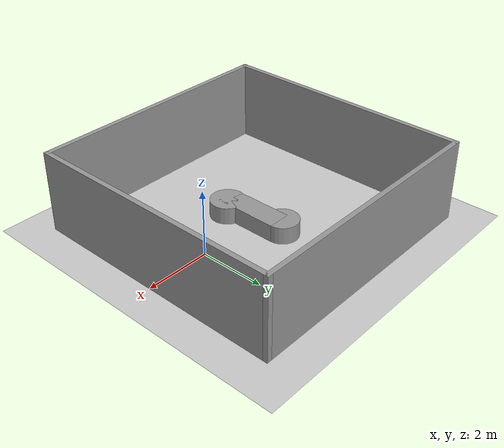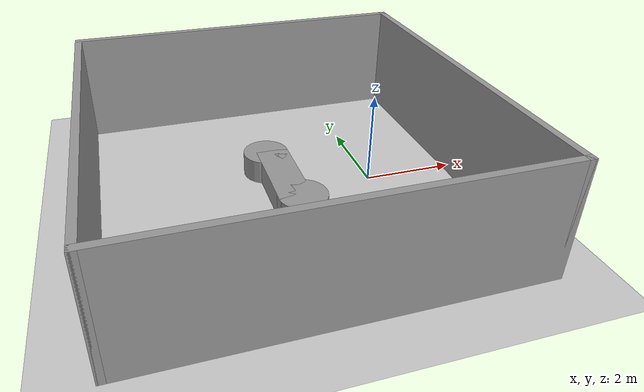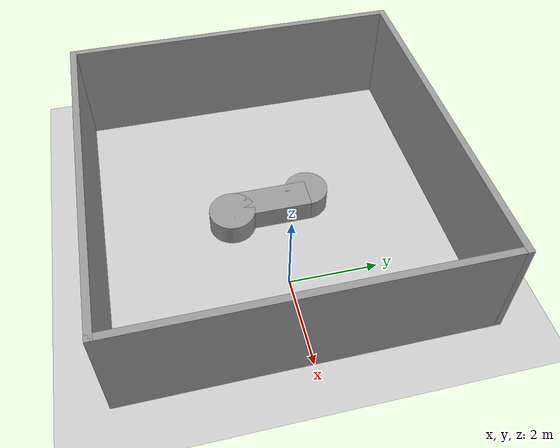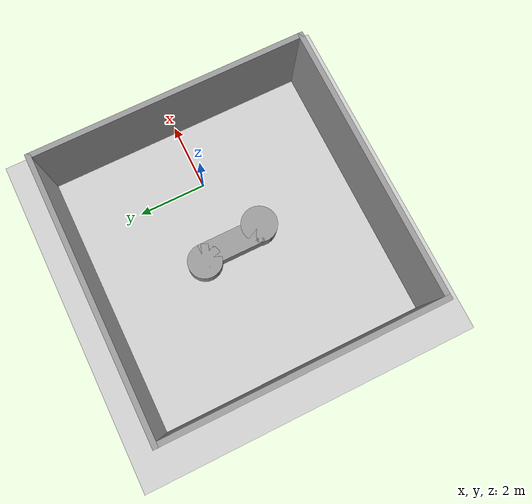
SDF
<?xml version="1.0" ?>
<sdf version='1.9'>
  <world name='moma_world_empty_world'>
    <physics name='1ms' type='ignored'>
      <max_step_size>0.004</max_step_size>
      <real_time_factor>1</real_time_factor>
      <real_time_update_rate>250</real_time_update_rate>
    </physics>
    <plugin name='gz::sim::systems::Physics' filename='gz-sim-physics-system'/>
    <plugin name='gz::sim::systems::UserCommands' filename='gz-sim-user-commands-system'/>
    <plugin name='gz::sim::systems::SceneBroadcaster' filename='gz-sim-scene-broadcaster-system'/>
    <plugin name='gz::sim::systems::Contact' filename='gz-sim-contact-system'/>
    <plugin name='gz::sim::systems::Sensors' filename='gz-sim-sensors-system'>
      <render_engine>ogre2</render_engine>
    </plugin>

    <plugin
      filename="gz-sim-imu-system"
      name="gz::sim::systems::Imu">
    </plugin>
    <gravity>0 0 -9.8</gravity>
    <magnetic_field>6e-06 2.3e-05 -4.2e-05</magnetic_field>
    <atmosphere type='adiabatic'/>
    <scene>
      <ambient>0.4 0.4 0.4 1</ambient>
      <background>0.7 0.7 0.7 1</background>
      <shadows>true</shadows>
    </scene>
    <model name='ground_plane'>
      <static>true</static>
      <link name='link'>
        <collision name='collision'>
          <geometry>
            <plane>
              <normal>0 0 1</normal>
              <size>100 100</size>
            </plane>
          </geometry>
          <surface>
            <friction>
              <ode/>
            </friction>
            <bounce/>
            <contact/>
          </surface>
        </collision>
        <visual name='visual'>
          <geometry>
            <plane>
              <normal>0 0 1</normal>
              <size>100 100</size>
            </plane>
          </geometry>
          <material>
            <ambient>0.8 0.8 0.8 1</ambient>
            <diffuse>0.8 0.8 0.8 1</diffuse>
            <specular>0.8 0.8 0.8 1</specular>
          </material>
        </visual>
        <pose>0 0 0 0 -0 0</pose>
        <inertial>
          <pose>0 0 0 0 -0 0</pose>
          <mass>1</mass>
          <inertia>
            <ixx>1</ixx>
            <ixy>0</ixy>
            <ixz>0</ixz>
            <iyy>1</iyy>
            <iyz>0</iyz>
            <izz>1</izz>
          </inertia>
        </inertial>
        <enable_wind>false</enable_wind>
      </link>
      <pose>10 10 0 0 -0 0</pose>
      <self_collide>false</self_collide>
    </model>
    <include>
      <uri>file:///home/phumint/moma_ws/install/moma_gazebo/share/moma_gazebo/models/eight_square_meter</uri>
      <name>eight_square_meter</name>
      <pose>-2 0 0 0 -0 0</pose>
    </include>
    <include>
      <uri>file:///home/phumint/moma_ws/install/moma_gazebo/share/moma_gazebo/models/demo_model</uri>
      <name>demo_model</name>
      <pose>-2 0 0.018999 -0 -0 0</pose>
    </include>
    <light name='sun' type='directional'>
      <pose>0 0 10 0 -0 0</pose>
      <cast_shadows>true</cast_shadows>
      <intensity>1</intensity>
      <direction>-0.5 0.1 -0.9</direction>
      <diffuse>0.8 0.8 0.8 1</diffuse>
      <specular>0.2 0.2 0.2 1</specular>
      <attenuation>
        <range>1000</range>
        <linear>0.01</linear>
        <constant>0.90000000000000002</constant>
        <quadratic>0.001</quadratic>
      </attenuation>
      <spot>
        <inner_angle>0</inner_angle>
        <outer_angle>0</outer_angle>
        <falloff>0</falloff>
      </spot>
    </light>
  </world>
</sdf>

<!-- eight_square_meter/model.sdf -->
<sdf version='1.7'>
  <model name='eight_square_meter'>
    <pose>-2.05016 2.30209 0 0 -0 0</pose>
    <link name='Wall_5'>
      <collision name='Wall_5_Collision'>
        <geometry>
          <box>
            <size>8 0.15 2.5</size>
          </box>
        </geometry>
        <pose>0 0 1.25 0 -0 0</pose>
      </collision>
      <visual name='Wall_5_Visual'>
        <pose>0 0 1.25 0 -0 0</pose>
        <geometry>
          <box>
            <size>8 0.15 2.5</size>
          </box>
        </geometry>
        <material>
          <script>
            <uri>file://media/materials/scripts/gazebo.material</uri>
            <name>Gazebo/Grey</name>
          </script>
          <ambient>1 1 1 1</ambient>
        </material>
        <meta>
          <layer>0</layer>
        </meta>
      </visual>
      <pose>0 -3.925 0 0 -0 0</pose>
    </link>
    <link name='Wall_6'>
      <collision name='Wall_6_Collision'>
        <geometry>
          <box>
            <size>8 0.15 2.5</size>
          </box>
        </geometry>
        <pose>0 0 1.25 0 -0 0</pose>
      </collision>
      <visual name='Wall_6_Visual'>
        <pose>0 0 1.25 0 -0 0</pose>
        <geometry>
          <box>
            <size>8 0.15 2.5</size>
          </box>
        </geometry>
        <material>
          <script>
            <uri>file://media/materials/scripts/gazebo.material</uri>
            <name>Gazebo/Grey</name>
          </script>
          <ambient>1 1 1 1</ambient>
        </material>
        <meta>
          <layer>0</layer>
        </meta>
      </visual>
      <pose>3.925 0 0 0 -0 1.5708</pose>
    </link>
    <link name='Wall_7'>
      <collision name='Wall_7_Collision'>
        <geometry>
          <box>
            <size>8 0.15 2.5</size>
          </box>
        </geometry>
        <pose>0 0 1.25 0 -0 0</pose>
      </collision>
      <visual name='Wall_7_Visual'>
        <pose>0 0 1.25 0 -0 0</pose>
        <geometry>
          <box>
            <size>8 0.15 2.5</size>
          </box>
        </geometry>
        <material>
          <script>
            <uri>file://media/materials/scripts/gazebo.material</uri>
            <name>Gazebo/Grey</name>
          </script>
          <ambient>1 1 1 1</ambient>
        </material>
        <meta>
          <layer>0</layer>
        </meta>
      </visual>
      <pose>0 3.925 0 0 -0 3.14159</pose>
    </link>
    <link name='Wall_8'>
      <collision name='Wall_8_Collision'>
        <geometry>
          <box>
            <size>8 0.15 2.5</size>
          </box>
        </geometry>
        <pose>0 0 1.25 0 -0 0</pose>
      </collision>
      <visual name='Wall_8_Visual'>
        <pose>0 0 1.25 0 -0 0</pose>
        <geometry>
          <box>
            <size>8 0.15 2.5</size>
          </box>
        </geometry>
        <material>
          <script>
            <uri>file://media/materials/scripts/gazebo.material</uri>
            <name>Gazebo/Grey</name>
          </script>
          <ambient>1 1 1 1</ambient>
        </material>
        <meta>
          <layer>0</layer>
        </meta>
      </visual>
      <pose>-3.925 0 0 0 -0 -1.5708</pose>
    </link>
    <static>1</static>
  </model>
</sdf>

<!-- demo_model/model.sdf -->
<sdf version='1.7'>
  <model name='demo_model'>
    <link name='link_0'>
      <inertial>
        <mass>1.41219</mass>
        <inertia>
          <ixx>0.579585</ixx>
          <ixy>0</ixy>
          <ixz>0</ixz>
          <iyy>0.177478</iyy>
          <iyz>0</iyz>
          <izz>0.521697</izz>
        </inertia>
        <pose>0 0 0 0 -0 0</pose>
      </inertial>
      <pose>-0.003219 -0.04931 0 0 -0 0</pose>
      <visual name='visual'>
        <pose>0 0 0 0 -0 0</pose>
        <geometry>
          <box>
            <size>0.712814 1.98115 1</size>
          </box>
        </geometry>
        <material>
          <lighting>1</lighting>
          <script>
            <uri>file://media/materials/scripts/gazebo.material</uri>
            <name>Gazebo/Grey</name>
          </script>
          <shader type='pixel'/>
          <emissive>0 0 0 1</emissive>
        </material>
        <transparency>0</transparency>
        <cast_shadows>1</cast_shadows>
      </visual>
      <collision name='collision'>
        <laser_retro>0</laser_retro>
        <max_contacts>10</max_contacts>
        <pose>0 0 0 0 -0 0</pose>
        <geometry>
          <box>
            <size>0.712814 1.98115 1</size>
          </box>
        </geometry>
        <surface>
          <friction>
            <ode>
              <mu>1</mu>
              <mu2>1</mu2>
              <fdir1>0 0 0</fdir1>
              <slip1>0</slip1>
              <slip2>0</slip2>
            </ode>
            <torsional>
              <coefficient>1</coefficient>
              <patch_radius>0</patch_radius>
              <surface_radius>0</surface_radius>
              <use_patch_radius>1</use_patch_radius>
              <ode>
                <slip>0</slip>
              </ode>
            </torsional>
          </friction>
          <bounce>
            <restitution_coefficient>0</restitution_coefficient>
            <threshold>1e+06</threshold>
          </bounce>
          <contact>
            <collide_without_contact>0</collide_without_contact>
            <collide_without_contact_bitmask>1</collide_without_contact_bitmask>
            <collide_bitmask>1</collide_bitmask>
            <ode>
              <soft_cfm>0</soft_cfm>
              <soft_erp>0.2</soft_erp>
              <kp>1e+13</kp>
              <kd>1</kd>
              <max_vel>0.01</max_vel>
              <min_depth>0</min_depth>
            </ode>
            <bullet>
              <split_impulse>1</split_impulse>
              <split_impulse_penetration_threshold>-0.01</split_impulse_penetration_threshold>
              <soft_cfm>0</soft_cfm>
              <soft_erp>0.2</soft_erp>
              <kp>1e+13</kp>
              <kd>1</kd>
            </bullet>
          </contact>
        </surface>
      </collision>
    </link>
    <link name='link_1'>
      <inertial>
        <mass>1.12437</mass>
        <inertia>
          <ixx>0.172706</ixx>
          <ixy>0</ixy>
          <ixz>0</ixz>
          <iyy>0.172706</iyy>
          <iyz>0</iyz>
          <izz>0.158018</izz>
        </inertia>
        <pose>0 0 0 0 -0 0</pose>
      </inertial>
      <pose>0.149403 -0.891814 0 0 0 -0.687223</pose>
      <visual name='visual'>
        <pose>0 0 0 0 -0 0</pose>
        <geometry>
          <cylinder>
            <radius>0.530167</radius>
            <length>1</length>
          </cylinder>
        </geometry>
        <material>
          <lighting>1</lighting>
          <script>
            <uri>file://media/materials/scripts/gazebo.material</uri>
            <name>Gazebo/Grey</name>
          </script>
          <shader type='pixel'/>
        </material>
        <transparency>0</transparency>
        <cast_shadows>1</cast_shadows>
      </visual>
      <collision name='collision'>
        <laser_retro>0</laser_retro>
        <max_contacts>10</max_contacts>
        <pose>0 0 0 0 -0 0</pose>
        <geometry>
          <cylinder>
            <radius>0.530167</radius>
            <length>1</length>
          </cylinder>
        </geometry>
        <surface>
          <friction>
            <ode>
              <mu>1</mu>
              <mu2>1</mu2>
              <fdir1>0 0 0</fdir1>
              <slip1>0</slip1>
              <slip2>0</slip2>
            </ode>
            <torsional>
              <coefficient>1</coefficient>
              <patch_radius>0</patch_radius>
              <surface_radius>0</surface_radius>
              <use_patch_radius>1</use_patch_radius>
              <ode>
                <slip>0</slip>
              </ode>
            </torsional>
          </friction>
          <bounce>
            <restitution_coefficient>0</restitution_coefficient>
            <threshold>1e+06</threshold>
          </bounce>
          <contact>
            <collide_without_contact>0</collide_without_contact>
            <collide_without_contact_bitmask>1</collide_without_contact_bitmask>
            <collide_bitmask>1</collide_bitmask>
            <ode>
              <soft_cfm>0</soft_cfm>
              <soft_erp>0.2</soft_erp>
              <kp>1e+13</kp>
              <kd>1</kd>
              <max_vel>0.01</max_vel>
              <min_depth>0</min_depth>
            </ode>
            <bullet>
              <split_impulse>1</split_impulse>
              <split_impulse_penetration_threshold>-0.01</split_impulse_penetration_threshold>
              <soft_cfm>0</soft_cfm>
              <soft_erp>0.2</soft_erp>
              <kp>1e+13</kp>
              <kd>1</kd>
            </bullet>
          </contact>
        </surface>
      </collision>
    </link>
    <link name='link_2'>
      <inertial>
        <mass>1</mass>
        <inertia>
          <ixx>0.145833</ixx>
          <ixy>0</ixy>
          <ixz>0</ixz>
          <iyy>0.145833</iyy>
          <iyz>0</iyz>
          <izz>0.125</izz>
        </inertia>
      </inertial>
      <pose>-0.146184 0.941124 0 0 -0 0</pose>
      <visual name='visual'>
        <pose>0 0 0 0 -0 0</pose>
        <geometry>
          <cylinder>
            <radius>0.5</radius>
            <length>1</length>
          </cylinder>
        </geometry>
        <material>
          <lighting>1</lighting>
          <script>
            <uri>file://media/materials/scripts/gazebo.material</uri>
            <name>Gazebo/Grey</name>
          </script>
          <shader type='pixel'/>
        </material>
        <transparency>0</transparency>
        <cast_shadows>1</cast_shadows>
      </visual>
      <collision name='collision'>
        <laser_retro>0</laser_retro>
        <max_contacts>10</max_contacts>
        <pose>0 0 0 0 -0 0</pose>
        <geometry>
          <cylinder>
            <radius>0.5</radius>
            <length>1</length>
          </cylinder>
        </geometry>
        <surface>
          <friction>
            <ode>
              <mu>1</mu>
              <mu2>1</mu2>
              <fdir1>0 0 0</fdir1>
              <slip1>0</slip1>
              <slip2>0</slip2>
            </ode>
            <torsional>
              <coefficient>1</coefficient>
              <patch_radius>0</patch_radius>
              <surface_radius>0</surface_radius>
              <use_patch_radius>1</use_patch_radius>
              <ode>
                <slip>0</slip>
              </ode>
            </torsional>
          </friction>
          <bounce>
            <restitution_coefficient>0</restitution_coefficient>
            <threshold>1e+06</threshold>
          </bounce>
          <contact>
            <collide_without_contact>0</collide_without_contact>
            <collide_without_contact_bitmask>1</collide_without_contact_bitmask>
            <collide_bitmask>1</collide_bitmask>
            <ode>
              <soft_cfm>0</soft_cfm>
              <soft_erp>0.2</soft_erp>
              <kp>1e+13</kp>
              <kd>1</kd>
              <max_vel>0.01</max_vel>
              <min_depth>0</min_depth>
            </ode>
            <bullet>
              <split_impulse>1</split_impulse>
              <split_impulse_penetration_threshold>-0.01</split_impulse_penetration_threshold>
              <soft_cfm>0</soft_cfm>
              <soft_erp>0.2</soft_erp>
              <kp>1e+13</kp>
              <kd>1</kd>
            </bullet>
          </contact>
        </surface>
      </collision>
    </link>
    <static>0</static>
    <allow_auto_disable>1</allow_auto_disable>
  </model>
</sdf>
